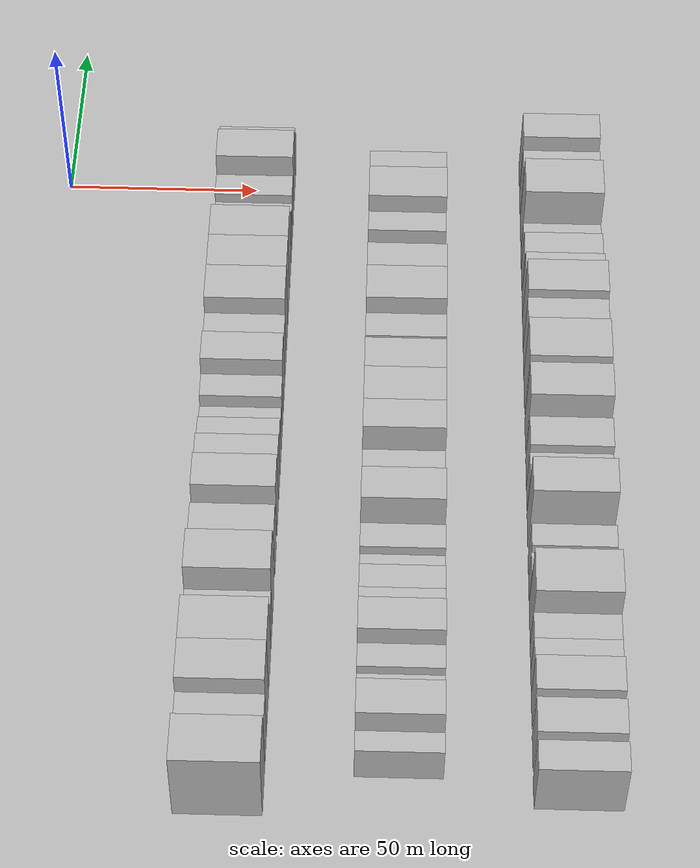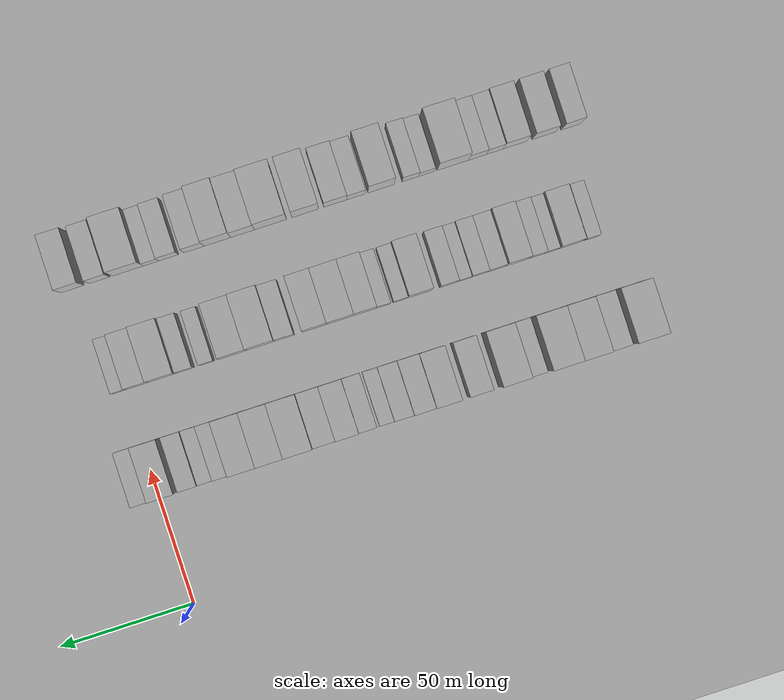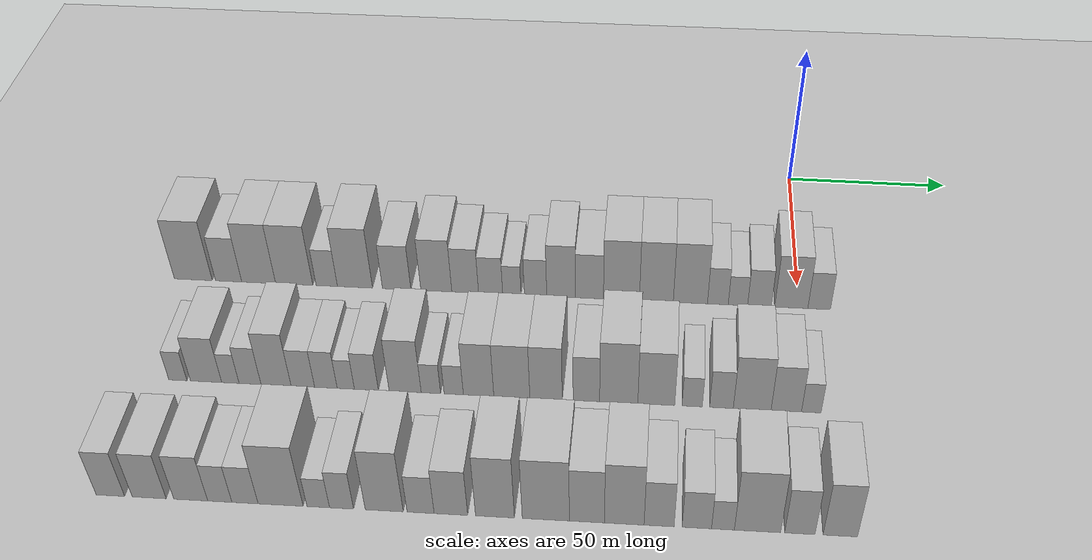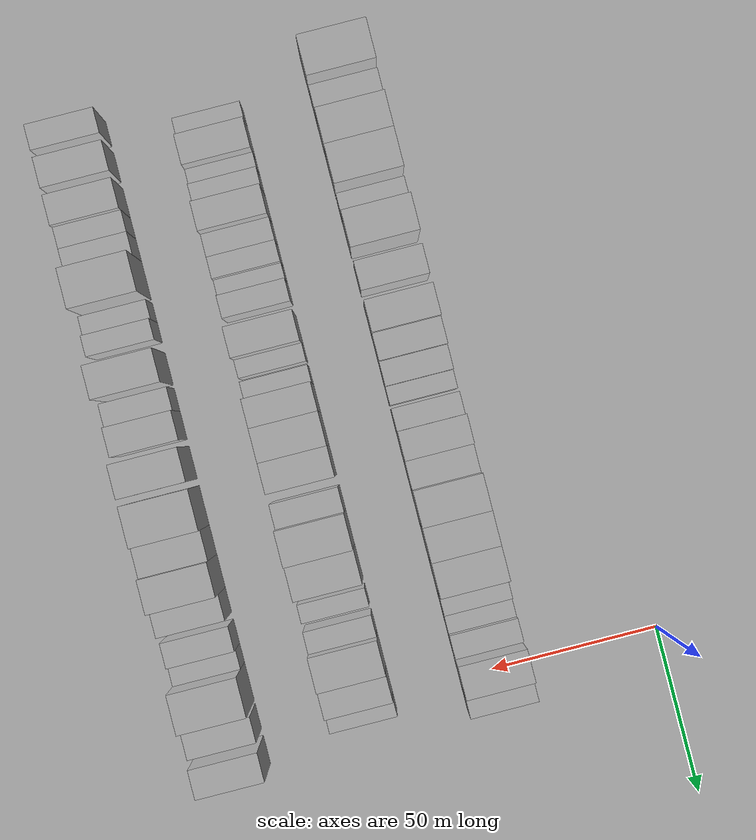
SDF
<sdf version="1.6">
 <world name="default">
  <include><name>ground_plane_1</name><uri>model://HANNAS_ground_plane</uri></include>
  <include>
   <name>ground_plane_2</name>
   <uri>model://HANNAS_ground_plane</uri>
   <pose>100 0 0  0 0 0</pose>
  </include>
  <model name="building_24">
   <static>1</static>
   <pose>50.0000 -181.7386 0 0.000000 0.000000 0.000000</pose>
   <link name="link">
    <pose>0 0 12.00 0 0 0</pose>
    <collision name="collision"><geometry><box><size>20.0000 11.6071 24.0000</size></box></geometry></collision>
    <visual name="visual">
     <cast_shadows>0</cast_shadows>
     <geometry><box><size>20.0000 11.6071 24.0000</size></box></geometry>
     <material>
      <script>
       <uri>model://HANNAS_wall/materials/scripts</uri>
       <uri>model://HANNAS_wall/materials/textures</uri>
       <name>vrc/HANNAS_wall</name>
      </script>
     </material>
    </visual>
   </link>
  </model>
  <model name="building_25">
   <static>1</static>
   <pose>50.0000 -170.9061 0 0.000000 0.000000 0.000000</pose>
   <link name="link">
    <pose>0 0 9.00 0 0 0</pose>
    <collision name="collision"><geometry><box><size>20.0000 8.0578 18.0000</size></box></geometry></collision>
    <visual name="visual">
     <cast_shadows>0</cast_shadows>
     <geometry><box><size>20.0000 8.0578 18.0000</size></box></geometry>
     <material>
      <script>
       <uri>model://HANNAS_wall/materials/scripts</uri>
       <uri>model://HANNAS_wall/materials/textures</uri>
       <name>vrc/HANNAS_wall</name>
      </script>
     </material>
    </visual>
   </link>
  </model>
  <model name="building_26">
   <static>1</static>
   <pose>50.0000 -161.7158 0 0.000000 0.000000 0.000000</pose>
   <link name="link">
    <pose>0 0 12.00 0 0 0</pose>
    <collision name="collision"><geometry><box><size>20.0000 10.3230 24.0000</size></box></geometry></collision>
    <visual name="visual">
     <cast_shadows>0</cast_shadows>
     <geometry><box><size>20.0000 10.3230 24.0000</size></box></geometry>
     <material>
      <script>
       <uri>model://HANNAS_wall/materials/scripts</uri>
       <uri>model://HANNAS_wall/materials/textures</uri>
       <name>vrc/HANNAS_wall</name>
      </script>
     </material>
    </visual>
   </link>
  </model>
  <model name="building_27">
   <static>1</static>
   <pose>50.0000 -150.8850 0 0.000000 0.000000 0.000000</pose>
   <link name="link">
    <pose>0 0 12.00 0 0 0</pose>
    <collision name="collision"><geometry><box><size>20.0000 11.3386 24.0000</size></box></geometry></collision>
    <visual name="visual">
     <cast_shadows>0</cast_shadows>
     <geometry><box><size>20.0000 11.3386 24.0000</size></box></geometry>
     <material>
      <script>
       <uri>model://HANNAS_wall/materials/scripts</uri>
       <uri>model://HANNAS_wall/materials/textures</uri>
       <name>vrc/HANNAS_wall</name>
      </script>
     </material>
    </visual>
   </link>
  </model>
  <model name="building_28">
   <static>1</static>
   <pose>50.0000 -140.9784 0 0.000000 0.000000 0.000000</pose>
   <link name="link">
    <pose>0 0 7.50 0 0 0</pose>
    <collision name="collision"><geometry><box><size>20.0000 6.4745 15.0000</size></box></geometry></collision>
    <visual name="visual">
     <cast_shadows>0</cast_shadows>
     <geometry><box><size>20.0000 6.4745 15.0000</size></box></geometry>
     <material>
      <script>
       <uri>model://HANNAS_wall/materials/scripts</uri>
       <uri>model://HANNAS_wall/materials/textures</uri>
       <name>vrc/HANNAS_wall</name>
      </script>
     </material>
    </visual>
   </link>
  </model>
  <model name="building_29">
   <static>1</static>
   <pose>50.0000 -132.4195 0 0.000000 0.000000 0.000000</pose>
   <link name="link">
    <pose>0 0 12.00 0 0 0</pose>
    <collision name="collision"><geometry><box><size>20.0000 10.6431 24.0000</size></box></geometry></collision>
    <visual name="visual">
     <cast_shadows>0</cast_shadows>
     <geometry><box><size>20.0000 10.6431 24.0000</size></box></geometry>
     <material>
      <script>
       <uri>model://HANNAS_wall/materials/scripts</uri>
       <uri>model://HANNAS_wall/materials/textures</uri>
       <name>vrc/HANNAS_wall</name>
      </script>
     </material>
    </visual>
   </link>
  </model>
  <model name="building_30">
   <static>1</static>
   <pose>50.0000 -119.7952 0 0.000000 0.000000 0.000000</pose>
   <link name="link">
    <pose>0 0 9.00 0 0 0</pose>
    <collision name="collision"><geometry><box><size>20.0000 8.6057 18.0000</size></box></geometry></collision>
    <visual name="visual">
     <cast_shadows>0</cast_shadows>
     <geometry><box><size>20.0000 8.6057 18.0000</size></box></geometry>
     <material>
      <script>
       <uri>model://HANNAS_wall/materials/scripts</uri>
       <uri>model://HANNAS_wall/materials/textures</uri>
       <name>vrc/HANNAS_wall</name>
      </script>
     </material>
    </visual>
   </link>
  </model>
  <model name="building_31">
   <static>1</static>
   <pose>50.0000 -107.8266 0 0.000000 0.000000 0.000000</pose>
   <link name="link">
    <pose>0 0 10.50 0 0 0</pose>
    <collision name="collision"><geometry><box><size>20.0000 9.3315 21.0000</size></box></geometry></collision>
    <visual name="visual">
     <cast_shadows>0</cast_shadows>
     <geometry><box><size>20.0000 9.3315 21.0000</size></box></geometry>
     <material>
      <script>
       <uri>model://HANNAS_wall/materials/scripts</uri>
       <uri>model://HANNAS_wall/materials/textures</uri>
       <name>vrc/HANNAS_wall</name>
      </script>
     </material>
    </visual>
   </link>
  </model>
  <model name="building_32">
   <static>1</static>
   <pose>50.0000 -99.1483 0 0.000000 0.000000 0.000000</pose>
   <link name="link">
    <pose>0 0 9.00 0 0 0</pose>
    <collision name="collision"><geometry><box><size>20.0000 8.0252 18.0000</size></box></geometry></collision>
    <visual name="visual">
     <cast_shadows>0</cast_shadows>
     <geometry><box><size>20.0000 8.0252 18.0000</size></box></geometry>
     <material>
      <script>
       <uri>model://HANNAS_wall/materials/scripts</uri>
       <uri>model://HANNAS_wall/materials/textures</uri>
       <name>vrc/HANNAS_wall</name>
      </script>
     </material>
    </visual>
   </link>
  </model>
  <model name="building_33">
   <static>1</static>
   <pose>50.0000 -91.5159 0 0.000000 0.000000 0.000000</pose>
   <link name="link">
    <pose>0 0 7.50 0 0 0</pose>
    <collision name="collision"><geometry><box><size>20.0000 7.2396 15.0000</size></box></geometry></collision>
    <visual name="visual">
     <cast_shadows>0</cast_shadows>
     <geometry><box><size>20.0000 7.2396 15.0000</size></box></geometry>
     <material>
      <script>
       <uri>model://HANNAS_wall/materials/scripts</uri>
       <uri>model://HANNAS_wall/materials/textures</uri>
       <name>vrc/HANNAS_wall</name>
      </script>
     </material>
    </visual>
   </link>
  </model>
  <model name="building_34">
   <static>1</static>
   <pose>50.0000 -85.1472 0 0.000000 0.000000 0.000000</pose>
   <link name="link">
    <pose>0 0 6.00 0 0 0</pose>
    <collision name="collision"><geometry><box><size>20.0000 5.4978 12.0000</size></box></geometry></collision>
    <visual name="visual">
     <cast_shadows>0</cast_shadows>
     <geometry><box><size>20.0000 5.4978 12.0000</size></box></geometry>
     <material>
      <script>
       <uri>model://HANNAS_wall/materials/scripts</uri>
       <uri>model://HANNAS_wall/materials/textures</uri>
       <name>vrc/HANNAS_wall</name>
      </script>
     </material>
    </visual>
   </link>
  </model>
  <model name="building_35">
   <static>1</static>
   <pose>50.0000 -78.0535 0 0.000000 0.000000 0.000000</pose>
   <link name="link">
    <pose>0 0 7.50 0 0 0</pose>
    <collision name="collision"><geometry><box><size>20.0000 6.6894 15.0000</size></box></geometry></collision>
    <visual name="visual">
     <cast_shadows>0</cast_shadows>
     <geometry><box><size>20.0000 6.6894 15.0000</size></box></geometry>
     <material>
      <script>
       <uri>model://HANNAS_wall/materials/scripts</uri>
       <uri>model://HANNAS_wall/materials/textures</uri>
       <name>vrc/HANNAS_wall</name>
      </script>
     </material>
    </visual>
   </link>
  </model>
  <model name="building_36">
   <static>1</static>
   <pose>50.0000 -70.4153 0 0.000000 0.000000 0.000000</pose>
   <link name="link">
    <pose>0 0 10.50 0 0 0</pose>
    <collision name="collision"><geometry><box><size>20.0000 8.5872 21.0000</size></box></geometry></collision>
    <visual name="visual">
     <cast_shadows>0</cast_shadows>
     <geometry><box><size>20.0000 8.5872 21.0000</size></box></geometry>
     <material>
      <script>
       <uri>model://HANNAS_wall/materials/scripts</uri>
       <uri>model://HANNAS_wall/materials/textures</uri>
       <name>vrc/HANNAS_wall</name>
      </script>
     </material>
    </visual>
   </link>
  </model>
  <model name="building_37">
   <static>1</static>
   <pose>50.0000 -61.9511 0 0.000000 0.000000 0.000000</pose>
   <link name="link">
    <pose>0 0 9.00 0 0 0</pose>
    <collision name="collision"><geometry><box><size>20.0000 8.3411 18.0000</size></box></geometry></collision>
    <visual name="visual">
     <cast_shadows>0</cast_shadows>
     <geometry><box><size>20.0000 8.3411 18.0000</size></box></geometry>
     <material>
      <script>
       <uri>model://HANNAS_wall/materials/scripts</uri>
       <uri>model://HANNAS_wall/materials/textures</uri>
       <name>vrc/HANNAS_wall</name>
      </script>
     </material>
    </visual>
   </link>
  </model>
  <model name="building_38">
   <static>1</static>
   <pose>50.0000 -52.4399 0 0.000000 0.000000 0.000000</pose>
   <link name="link">
    <pose>0 0 12.00 0 0 0</pose>
    <collision name="collision"><geometry><box><size>20.0000 10.6813 24.0000</size></box></geometry></collision>
    <visual name="visual">
     <cast_shadows>0</cast_shadows>
     <geometry><box><size>20.0000 10.6813 24.0000</size></box></geometry>
     <material>
      <script>
       <uri>model://HANNAS_wall/materials/scripts</uri>
       <uri>model://HANNAS_wall/materials/textures</uri>
       <name>vrc/HANNAS_wall</name>
      </script>
     </material>
    </visual>
   </link>
  </model>
  <model name="building_39">
   <static>1</static>
   <pose>50.0000 -42.0835 0 0.000000 0.000000 0.000000</pose>
   <link name="link">
    <pose>0 0 12.00 0 0 0</pose>
    <collision name="collision"><geometry><box><size>20.0000 10.0317 24.0000</size></box></geometry></collision>
    <visual name="visual">
     <cast_shadows>0</cast_shadows>
     <geometry><box><size>20.0000 10.0317 24.0000</size></box></geometry>
     <material>
      <script>
       <uri>model://HANNAS_wall/materials/scripts</uri>
       <uri>model://HANNAS_wall/materials/textures</uri>
       <name>vrc/HANNAS_wall</name>
      </script>
     </material>
    </visual>
   </link>
  </model>
  <model name="building_40">
   <static>1</static>
   <pose>50.0000 -32.0134 0 0.000000 0.000000 0.000000</pose>
   <link name="link">
    <pose>0 0 12.00 0 0 0</pose>
    <collision name="collision"><geometry><box><size>20.0000 10.1085 24.0000</size></box></geometry></collision>
    <visual name="visual">
     <cast_shadows>0</cast_shadows>
     <geometry><box><size>20.0000 10.1085 24.0000</size></box></geometry>
     <material>
      <script>
       <uri>model://HANNAS_wall/materials/scripts</uri>
       <uri>model://HANNAS_wall/materials/textures</uri>
       <name>vrc/HANNAS_wall</name>
      </script>
     </material>
    </visual>
   </link>
  </model>
  <model name="building_41">
   <static>1</static>
   <pose>50.0000 -23.8948 0 0.000000 0.000000 0.000000</pose>
   <link name="link">
    <pose>0 0 7.50 0 0 0</pose>
    <collision name="collision"><geometry><box><size>20.0000 6.1287 15.0000</size></box></geometry></collision>
    <visual name="visual">
     <cast_shadows>0</cast_shadows>
     <geometry><box><size>20.0000 6.1287 15.0000</size></box></geometry>
     <material>
      <script>
       <uri>model://HANNAS_wall/materials/scripts</uri>
       <uri>model://HANNAS_wall/materials/textures</uri>
       <name>vrc/HANNAS_wall</name>
      </script>
     </material>
    </visual>
   </link>
  </model>
  <model name="building_42">
   <static>1</static>
   <pose>50.0000 -17.9793 0 0.000000 0.000000 0.000000</pose>
   <link name="link">
    <pose>0 0 6.00 0 0 0</pose>
    <collision name="collision"><geometry><box><size>20.0000 5.7023 12.0000</size></box></geometry></collision>
    <visual name="visual">
     <cast_shadows>0</cast_shadows>
     <geometry><box><size>20.0000 5.7023 12.0000</size></box></geometry>
     <material>
      <script>
       <uri>model://HANNAS_wall/materials/scripts</uri>
       <uri>model://HANNAS_wall/materials/textures</uri>
       <name>vrc/HANNAS_wall</name>
      </script>
     </material>
    </visual>
   </link>
  </model>
  <model name="building_43">
   <static>1</static>
   <pose>50.0000 -11.6382 0 0.000000 0.000000 0.000000</pose>
   <link name="link">
    <pose>0 0 7.50 0 0 0</pose>
    <collision name="collision"><geometry><box><size>20.0000 6.9798 15.0000</size></box></geometry></collision>
    <visual name="visual">
     <cast_shadows>0</cast_shadows>
     <geometry><box><size>20.0000 6.9798 15.0000</size></box></geometry>
     <material>
      <script>
       <uri>model://HANNAS_wall/materials/scripts</uri>
       <uri>model://HANNAS_wall/materials/textures</uri>
       <name>vrc/HANNAS_wall</name>
      </script>
     </material>
    </visual>
   </link>
  </model>
  <model name="building_44">
   <static>1</static>
   <pose>50.0000 -2.2863 0 0.000000 0.000000 0.000000</pose>
   <link name="link">
    <pose>0 0 10.50 0 0 0</pose>
    <collision name="collision"><geometry><box><size>20.0000 9.7241 21.0000</size></box></geometry></collision>
    <visual name="visual">
     <cast_shadows>0</cast_shadows>
     <geometry><box><size>20.0000 9.7241 21.0000</size></box></geometry>
     <material>
      <script>
       <uri>model://HANNAS_wall/materials/scripts</uri>
       <uri>model://HANNAS_wall/materials/textures</uri>
       <name>vrc/HANNAS_wall</name>
      </script>
     </material>
    </visual>
   </link>
  </model>
  <model name="building_45">
   <static>1</static>
   <pose>50.0000 5.8928 0 0.000000 0.000000 0.000000</pose>
   <link name="link">
    <pose>0 0 7.50 0 0 0</pose>
    <collision name="collision"><geometry><box><size>20.0000 6.6339 15.0000</size></box></geometry></collision>
    <visual name="visual">
     <cast_shadows>0</cast_shadows>
     <geometry><box><size>20.0000 6.6339 15.0000</size></box></geometry>
     <material>
      <script>
       <uri>model://HANNAS_wall/materials/scripts</uri>
       <uri>model://HANNAS_wall/materials/textures</uri>
       <name>vrc/HANNAS_wall</name>
      </script>
     </material>
    </visual>
   </link>
  </model>
  <model name="building_115">
   <static>1</static>
   <pose>90.0000 -174.5740 0 0.000000 0.000000 0.000000</pose>
   <link name="link">
    <pose>0 0 6.00 0 0 0</pose>
    <collision name="collision"><geometry><box><size>20.0000 5.1584 12.0000</size></box></geometry></collision>
    <visual name="visual">
     <cast_shadows>0</cast_shadows>
     <geometry><box><size>20.0000 5.1584 12.0000</size></box></geometry>
     <material>
      <script>
       <uri>model://HANNAS_wall/materials/scripts</uri>
       <uri>model://HANNAS_wall/materials/textures</uri>
       <name>vrc/HANNAS_wall</name>
      </script>
     </material>
    </visual>
   </link>
  </model>
  <model name="building_116">
   <static>1</static>
   <pose>90.0000 -166.5674 0 0.000000 0.000000 0.000000</pose>
   <link name="link">
    <pose>0 0 9.00 0 0 0</pose>
    <collision name="collision"><geometry><box><size>20.0000 8.8548 18.0000</size></box></geometry></collision>
    <visual name="visual">
     <cast_shadows>0</cast_shadows>
     <geometry><box><size>20.0000 8.8548 18.0000</size></box></geometry>
     <material>
      <script>
       <uri>model://HANNAS_wall/materials/scripts</uri>
       <uri>model://HANNAS_wall/materials/textures</uri>
       <name>vrc/HANNAS_wall</name>
      </script>
     </material>
    </visual>
   </link>
  </model>
  <model name="building_117">
   <static>1</static>
   <pose>90.0000 -159.6843 0 0.000000 0.000000 0.000000</pose>
   <link name="link">
    <pose>0 0 6.00 0 0 0</pose>
    <collision name="collision"><geometry><box><size>20.0000 4.9114 12.0000</size></box></geometry></collision>
    <visual name="visual">
     <cast_shadows>0</cast_shadows>
     <geometry><box><size>20.0000 4.9114 12.0000</size></box></geometry>
     <material>
      <script>
       <uri>model://HANNAS_wall/materials/scripts</uri>
       <uri>model://HANNAS_wall/materials/textures</uri>
       <name>vrc/HANNAS_wall</name>
      </script>
     </material>
    </visual>
   </link>
  </model>
  <model name="building_118">
   <static>1</static>
   <pose>90.0000 -154.1243 0 0.000000 0.000000 0.000000</pose>
   <link name="link">
    <pose>0 0 7.50 0 0 0</pose>
    <collision name="collision"><geometry><box><size>20.0000 6.2087 15.0000</size></box></geometry></collision>
    <visual name="visual">
     <cast_shadows>0</cast_shadows>
     <geometry><box><size>20.0000 6.2087 15.0000</size></box></geometry>
     <material>
      <script>
       <uri>model://HANNAS_wall/materials/scripts</uri>
       <uri>model://HANNAS_wall/materials/textures</uri>
       <name>vrc/HANNAS_wall</name>
      </script>
     </material>
    </visual>
   </link>
  </model>
  <model name="building_119">
   <static>1</static>
   <pose>90.0000 -146.7748 0 0.000000 0.000000 0.000000</pose>
   <link name="link">
    <pose>0 0 10.50 0 0 0</pose>
    <collision name="collision"><geometry><box><size>20.0000 8.4903 21.0000</size></box></geometry></collision>
    <visual name="visual">
     <cast_shadows>0</cast_shadows>
     <geometry><box><size>20.0000 8.4903 21.0000</size></box></geometry>
     <material>
      <script>
       <uri>model://HANNAS_wall/materials/scripts</uri>
       <uri>model://HANNAS_wall/materials/textures</uri>
       <name>vrc/HANNAS_wall</name>
      </script>
     </material>
    </visual>
   </link>
  </model>
  <model name="building_120">
   <static>1</static>
   <pose>90.0000 -139.2105 0 0.000000 0.000000 0.000000</pose>
   <link name="link">
    <pose>0 0 7.50 0 0 0</pose>
    <collision name="collision"><geometry><box><size>20.0000 6.6384 15.0000</size></box></geometry></collision>
    <visual name="visual">
     <cast_shadows>0</cast_shadows>
     <geometry><box><size>20.0000 6.6384 15.0000</size></box></geometry>
     <material>
      <script>
       <uri>model://HANNAS_wall/materials/scripts</uri>
       <uri>model://HANNAS_wall/materials/textures</uri>
       <name>vrc/HANNAS_wall</name>
      </script>
     </material>
    </visual>
   </link>
  </model>
  <model name="building_121">
   <static>1</static>
   <pose>90.0000 -132.7266 0 0.000000 0.000000 0.000000</pose>
   <link name="link">
    <pose>0 0 7.50 0 0 0</pose>
    <collision name="collision"><geometry><box><size>20.0000 6.3294 15.0000</size></box></geometry></collision>
    <visual name="visual">
     <cast_shadows>0</cast_shadows>
     <geometry><box><size>20.0000 6.3294 15.0000</size></box></geometry>
     <material>
      <script>
       <uri>model://HANNAS_wall/materials/scripts</uri>
       <uri>model://HANNAS_wall/materials/textures</uri>
       <name>vrc/HANNAS_wall</name>
      </script>
     </material>
    </visual>
   </link>
  </model>
  <model name="building_122">
   <static>1</static>
   <pose>90.0000 -127.1419 0 0.000000 0.000000 0.000000</pose>
   <link name="link">
    <pose>0 0 6.00 0 0 0</pose>
    <collision name="collision"><geometry><box><size>20.0000 4.8399 12.0000</size></box></geometry></collision>
    <visual name="visual">
     <cast_shadows>0</cast_shadows>
     <geometry><box><size>20.0000 4.8399 12.0000</size></box></geometry>
     <material>
      <script>
       <uri>model://HANNAS_wall/materials/scripts</uri>
       <uri>model://HANNAS_wall/materials/textures</uri>
       <name>vrc/HANNAS_wall</name>
      </script>
     </material>
    </visual>
   </link>
  </model>
  <model name="building_123">
   <static>1</static>
   <pose>90.0000 -121.3613 0 0.000000 0.000000 0.000000</pose>
   <link name="link">
    <pose>0 0 7.50 0 0 0</pose>
    <collision name="collision"><geometry><box><size>20.0000 6.7214 15.0000</size></box></geometry></collision>
    <visual name="visual">
     <cast_shadows>0</cast_shadows>
     <geometry><box><size>20.0000 6.7214 15.0000</size></box></geometry>
     <material>
      <script>
       <uri>model://HANNAS_wall/materials/scripts</uri>
       <uri>model://HANNAS_wall/materials/textures</uri>
       <name>vrc/HANNAS_wall</name>
      </script>
     </material>
    </visual>
   </link>
  </model>
  <model name="building_124">
   <static>1</static>
   <pose>90.0000 -110.5123 0 0.000000 0.000000 0.000000</pose>
   <link name="link">
    <pose>0 0 10.50 0 0 0</pose>
    <collision name="collision"><geometry><box><size>20.0000 8.9765 21.0000</size></box></geometry></collision>
    <visual name="visual">
     <cast_shadows>0</cast_shadows>
     <geometry><box><size>20.0000 8.9765 21.0000</size></box></geometry>
     <material>
      <script>
       <uri>model://HANNAS_wall/materials/scripts</uri>
       <uri>model://HANNAS_wall/materials/textures</uri>
       <name>vrc/HANNAS_wall</name>
      </script>
     </material>
    </visual>
   </link>
  </model>
  <model name="building_125">
   <static>1</static>
   <pose>90.0000 -103.3233 0 0.000000 0.000000 0.000000</pose>
   <link name="link">
    <pose>0 0 6.00 0 0 0</pose>
    <collision name="collision"><geometry><box><size>20.0000 5.4015 12.0000</size></box></geometry></collision>
    <visual name="visual">
     <cast_shadows>0</cast_shadows>
     <geometry><box><size>20.0000 5.4015 12.0000</size></box></geometry>
     <material>
      <script>
       <uri>model://HANNAS_wall/materials/scripts</uri>
       <uri>model://HANNAS_wall/materials/textures</uri>
       <name>vrc/HANNAS_wall</name>
      </script>
     </material>
    </visual>
   </link>
  </model>
  <model name="building_126">
   <static>1</static>
   <pose>90.0000 -96.9538 0 0.000000 0.000000 0.000000</pose>
   <link name="link">
    <pose>0 0 6.00 0 0 0</pose>
    <collision name="collision"><geometry><box><size>20.0000 5.3375 12.0000</size></box></geometry></collision>
    <visual name="visual">
     <cast_shadows>0</cast_shadows>
     <geometry><box><size>20.0000 5.3375 12.0000</size></box></geometry>
     <material>
      <script>
       <uri>model://HANNAS_wall/materials/scripts</uri>
       <uri>model://HANNAS_wall/materials/textures</uri>
       <name>vrc/HANNAS_wall</name>
      </script>
     </material>
    </visual>
   </link>
  </model>
  <model name="building_127">
   <static>1</static>
   <pose>90.0000 -90.0505 0 0.000000 0.000000 0.000000</pose>
   <link name="link">
    <pose>0 0 10.50 0 0 0</pose>
    <collision name="collision"><geometry><box><size>20.0000 8.4691 21.0000</size></box></geometry></collision>
    <visual name="visual">
     <cast_shadows>0</cast_shadows>
     <geometry><box><size>20.0000 8.4691 21.0000</size></box></geometry>
     <material>
      <script>
       <uri>model://HANNAS_wall/materials/scripts</uri>
       <uri>model://HANNAS_wall/materials/textures</uri>
       <name>vrc/HANNAS_wall</name>
      </script>
     </material>
    </visual>
   </link>
  </model>
  <model name="building_128">
   <static>1</static>
   <pose>90.0000 -80.8154 0 0.000000 0.000000 0.000000</pose>
   <link name="link">
    <pose>0 0 10.50 0 0 0</pose>
    <collision name="collision"><geometry><box><size>20.0000 10.0011 21.0000</size></box></geometry></collision>
    <visual name="visual">
     <cast_shadows>0</cast_shadows>
     <geometry><box><size>20.0000 10.0011 21.0000</size></box></geometry>
     <material>
      <script>
       <uri>model://HANNAS_wall/materials/scripts</uri>
       <uri>model://HANNAS_wall/materials/textures</uri>
       <name>vrc/HANNAS_wall</name>
      </script>
     </material>
    </visual>
   </link>
  </model>
  <model name="building_129">
   <static>1</static>
   <pose>90.0000 -71.3346 0 0.000000 0.000000 0.000000</pose>
   <link name="link">
    <pose>0 0 10.50 0 0 0</pose>
    <collision name="collision"><geometry><box><size>20.0000 8.9607 21.0000</size></box></geometry></collision>
    <visual name="visual">
     <cast_shadows>0</cast_shadows>
     <geometry><box><size>20.0000 8.9607 21.0000</size></box></geometry>
     <material>
      <script>
       <uri>model://HANNAS_wall/materials/scripts</uri>
       <uri>model://HANNAS_wall/materials/textures</uri>
       <name>vrc/HANNAS_wall</name>
      </script>
     </material>
    </visual>
   </link>
  </model>
  <model name="building_130">
   <static>1</static>
   <pose>90.0000 -60.2048 0 0.000000 0.000000 0.000000</pose>
   <link name="link">
    <pose>0 0 9.00 0 0 0</pose>
    <collision name="collision"><geometry><box><size>20.0000 7.2988 18.0000</size></box></geometry></collision>
    <visual name="visual">
     <cast_shadows>0</cast_shadows>
     <geometry><box><size>20.0000 7.2988 18.0000</size></box></geometry>
     <material>
      <script>
       <uri>model://HANNAS_wall/materials/scripts</uri>
       <uri>model://HANNAS_wall/materials/textures</uri>
       <name>vrc/HANNAS_wall</name>
      </script>
     </material>
    </visual>
   </link>
  </model>
  <model name="building_131">
   <static>1</static>
   <pose>90.0000 -51.3034 0 0.000000 0.000000 0.000000</pose>
   <link name="link">
    <pose>0 0 12.00 0 0 0</pose>
    <collision name="collision"><geometry><box><size>20.0000 10.5041 24.0000</size></box></geometry></collision>
    <visual name="visual">
     <cast_shadows>0</cast_shadows>
     <geometry><box><size>20.0000 10.5041 24.0000</size></box></geometry>
     <material>
      <script>
       <uri>model://HANNAS_wall/materials/scripts</uri>
       <uri>model://HANNAS_wall/materials/textures</uri>
       <name>vrc/HANNAS_wall</name>
      </script>
     </material>
    </visual>
   </link>
  </model>
  <model name="building_132">
   <static>1</static>
   <pose>90.0000 -40.9867 0 0.000000 0.000000 0.000000</pose>
   <link name="link">
    <pose>0 0 10.50 0 0 0</pose>
    <collision name="collision"><geometry><box><size>20.0000 10.1294 21.0000</size></box></geometry></collision>
    <visual name="visual">
     <cast_shadows>0</cast_shadows>
     <geometry><box><size>20.0000 10.1294 21.0000</size></box></geometry>
     <material>
      <script>
       <uri>model://HANNAS_wall/materials/scripts</uri>
       <uri>model://HANNAS_wall/materials/textures</uri>
       <name>vrc/HANNAS_wall</name>
      </script>
     </material>
    </visual>
   </link>
  </model>
  <model name="building_133">
   <static>1</static>
   <pose>90.0000 -31.1497 0 0.000000 0.000000 0.000000</pose>
   <link name="link">
    <pose>0 0 6.00 0 0 0</pose>
    <collision name="collision"><geometry><box><size>20.0000 5.5446 12.0000</size></box></geometry></collision>
    <visual name="visual">
     <cast_shadows>0</cast_shadows>
     <geometry><box><size>20.0000 5.5446 12.0000</size></box></geometry>
     <material>
      <script>
       <uri>model://HANNAS_wall/materials/scripts</uri>
       <uri>model://HANNAS_wall/materials/textures</uri>
       <name>vrc/HANNAS_wall</name>
      </script>
     </material>
    </visual>
   </link>
  </model>
  <model name="building_134">
   <static>1</static>
   <pose>90.0000 -23.1475 0 0.000000 0.000000 0.000000</pose>
   <link name="link">
    <pose>0 0 7.50 0 0 0</pose>
    <collision name="collision"><geometry><box><size>20.0000 6.4598 15.0000</size></box></geometry></collision>
    <visual name="visual">
     <cast_shadows>0</cast_shadows>
     <geometry><box><size>20.0000 6.4598 15.0000</size></box></geometry>
     <material>
      <script>
       <uri>model://HANNAS_wall/materials/scripts</uri>
       <uri>model://HANNAS_wall/materials/textures</uri>
       <name>vrc/HANNAS_wall</name>
      </script>
     </material>
    </visual>
   </link>
  </model>
  <model name="building_135">
   <static>1</static>
   <pose>90.0000 -14.7688 0 0.000000 0.000000 0.000000</pose>
   <link name="link">
    <pose>0 0 10.50 0 0 0</pose>
    <collision name="collision"><geometry><box><size>20.0000 10.2975 21.0000</size></box></geometry></collision>
    <visual name="visual">
     <cast_shadows>0</cast_shadows>
     <geometry><box><size>20.0000 10.2975 21.0000</size></box></geometry>
     <material>
      <script>
       <uri>model://HANNAS_wall/materials/scripts</uri>
       <uri>model://HANNAS_wall/materials/textures</uri>
       <name>vrc/HANNAS_wall</name>
      </script>
     </material>
    </visual>
   </link>
  </model>
  <model name="building_136">
   <static>1</static>
   <pose>90.0000 -5.4896 0 0.000000 0.000000 0.000000</pose>
   <link name="link">
    <pose>0 0 9.00 0 0 0</pose>
    <collision name="collision"><geometry><box><size>20.0000 8.2609 18.0000</size></box></geometry></collision>
    <visual name="visual">
     <cast_shadows>0</cast_shadows>
     <geometry><box><size>20.0000 8.2609 18.0000</size></box></geometry>
     <material>
      <script>
       <uri>model://HANNAS_wall/materials/scripts</uri>
       <uri>model://HANNAS_wall/materials/textures</uri>
       <name>vrc/HANNAS_wall</name>
      </script>
     </material>
    </visual>
   </link>
  </model>
  <model name="building_137">
   <static>1</static>
   <pose>90.0000 1.3008 0 0.000000 0.000000 0.000000</pose>
   <link name="link">
    <pose>0 0 6.00 0 0 0</pose>
    <collision name="collision"><geometry><box><size>20.0000 5.3197 12.0000</size></box></geometry></collision>
    <visual name="visual">
     <cast_shadows>0</cast_shadows>
     <geometry><box><size>20.0000 5.3197 12.0000</size></box></geometry>
     <material>
      <script>
       <uri>model://HANNAS_wall/materials/scripts</uri>
       <uri>model://HANNAS_wall/materials/textures</uri>
       <name>vrc/HANNAS_wall</name>
      </script>
     </material>
    </visual>
   </link>
  </model>
  <model name="building_205">
   <static>1</static>
   <pose>130.0000 -180.3474 0 0.000000 0.000000 0.000000</pose>
   <link name="link">
    <pose>0 0 9.00 0 0 0</pose>
    <collision name="collision"><geometry><box><size>20.0000 7.4548 18.0000</size></box></geometry></collision>
    <visual name="visual">
     <cast_shadows>0</cast_shadows>
     <geometry><box><size>20.0000 7.4548 18.0000</size></box></geometry>
     <material>
      <script>
       <uri>model://HANNAS_wall/materials/scripts</uri>
       <uri>model://HANNAS_wall/materials/textures</uri>
       <name>vrc/HANNAS_wall</name>
      </script>
     </material>
    </visual>
   </link>
  </model>
  <model name="building_206">
   <static>1</static>
   <pose>130.0000 -170.1773 0 0.000000 0.000000 0.000000</pose>
   <link name="link">
    <pose>0 0 9.00 0 0 0</pose>
    <collision name="collision"><geometry><box><size>20.0000 8.8854 18.0000</size></box></geometry></collision>
    <visual name="visual">
     <cast_shadows>0</cast_shadows>
     <geometry><box><size>20.0000 8.8854 18.0000</size></box></geometry>
     <material>
      <script>
       <uri>model://HANNAS_wall/materials/scripts</uri>
       <uri>model://HANNAS_wall/materials/textures</uri>
       <name>vrc/HANNAS_wall</name>
      </script>
     </material>
    </visual>
   </link>
  </model>
  <model name="building_207">
   <static>1</static>
   <pose>130.0000 -159.2992 0 0.000000 0.000000 0.000000</pose>
   <link name="link">
    <pose>0 0 9.00 0 0 0</pose>
    <collision name="collision"><geometry><box><size>20.0000 8.8709 18.0000</size></box></geometry></collision>
    <visual name="visual">
     <cast_shadows>0</cast_shadows>
     <geometry><box><size>20.0000 8.8709 18.0000</size></box></geometry>
     <material>
      <script>
       <uri>model://HANNAS_wall/materials/scripts</uri>
       <uri>model://HANNAS_wall/materials/textures</uri>
       <name>vrc/HANNAS_wall</name>
      </script>
     </material>
    </visual>
   </link>
  </model>
  <model name="building_208">
   <static>1</static>
   <pose>130.0000 -151.7180 0 0.000000 0.000000 0.000000</pose>
   <link name="link">
    <pose>0 0 7.50 0 0 0</pose>
    <collision name="collision"><geometry><box><size>20.0000 6.2914 15.0000</size></box></geometry></collision>
    <visual name="visual">
     <cast_shadows>0</cast_shadows>
     <geometry><box><size>20.0000 6.2914 15.0000</size></box></geometry>
     <material>
      <script>
       <uri>model://HANNAS_wall/materials/scripts</uri>
       <uri>model://HANNAS_wall/materials/textures</uri>
       <name>vrc/HANNAS_wall</name>
      </script>
     </material>
    </visual>
   </link>
  </model>
  <model name="building_209">
   <static>1</static>
   <pose>130.0000 -145.1689 0 0.000000 0.000000 0.000000</pose>
   <link name="link">
    <pose>0 0 7.50 0 0 0</pose>
    <collision name="collision"><geometry><box><size>20.0000 6.8070 15.0000</size></box></geometry></collision>
    <visual name="visual">
     <cast_shadows>0</cast_shadows>
     <geometry><box><size>20.0000 6.8070 15.0000</size></box></geometry>
     <material>
      <script>
       <uri>model://HANNAS_wall/materials/scripts</uri>
       <uri>model://HANNAS_wall/materials/textures</uri>
       <name>vrc/HANNAS_wall</name>
      </script>
     </material>
    </visual>
   </link>
  </model>
  <model name="building_210">
   <static>1</static>
   <pose>130.0000 -135.9297 0 0.000000 0.000000 0.000000</pose>
   <link name="link">
    <pose>0 0 12.00 0 0 0</pose>
    <collision name="collision"><geometry><box><size>20.0000 11.6714 24.0000</size></box></geometry></collision>
    <visual name="visual">
     <cast_shadows>0</cast_shadows>
     <geometry><box><size>20.0000 11.6714 24.0000</size></box></geometry>
     <material>
      <script>
       <uri>model://HANNAS_wall/materials/scripts</uri>
       <uri>model://HANNAS_wall/materials/textures</uri>
       <name>vrc/HANNAS_wall</name>
      </script>
     </material>
    </visual>
   </link>
  </model>
  <model name="building_211">
   <static>1</static>
   <pose>130.0000 -126.1724 0 0.000000 0.000000 0.000000</pose>
   <link name="link">
    <pose>0 0 6.00 0 0 0</pose>
    <collision name="collision"><geometry><box><size>20.0000 5.8432 12.0000</size></box></geometry></collision>
    <visual name="visual">
     <cast_shadows>0</cast_shadows>
     <geometry><box><size>20.0000 5.8432 12.0000</size></box></geometry>
     <material>
      <script>
       <uri>model://HANNAS_wall/materials/scripts</uri>
       <uri>model://HANNAS_wall/materials/textures</uri>
       <name>vrc/HANNAS_wall</name>
      </script>
     </material>
    </visual>
   </link>
  </model>
  <model name="building_212">
   <static>1</static>
   <pose>130.0000 -120.1488 0 0.000000 0.000000 0.000000</pose>
   <link name="link">
    <pose>0 0 7.50 0 0 0</pose>
    <collision name="collision"><geometry><box><size>20.0000 6.2041 15.0000</size></box></geometry></collision>
    <visual name="visual">
     <cast_shadows>0</cast_shadows>
     <geometry><box><size>20.0000 6.2041 15.0000</size></box></geometry>
     <material>
      <script>
       <uri>model://HANNAS_wall/materials/scripts</uri>
       <uri>model://HANNAS_wall/materials/textures</uri>
       <name>vrc/HANNAS_wall</name>
      </script>
     </material>
    </visual>
   </link>
  </model>
  <model name="building_213">
   <static>1</static>
   <pose>130.0000 -109.1566 0 0.000000 0.000000 0.000000</pose>
   <link name="link">
    <pose>0 0 12.00 0 0 0</pose>
    <collision name="collision"><geometry><box><size>20.0000 9.7802 24.0000</size></box></geometry></collision>
    <visual name="visual">
     <cast_shadows>0</cast_shadows>
     <geometry><box><size>20.0000 9.7802 24.0000</size></box></geometry>
     <material>
      <script>
       <uri>model://HANNAS_wall/materials/scripts</uri>
       <uri>model://HANNAS_wall/materials/textures</uri>
       <name>vrc/HANNAS_wall</name>
      </script>
     </material>
    </visual>
   </link>
  </model>
  <model name="building_214">
   <static>1</static>
   <pose>130.0000 -99.8060 0 0.000000 0.000000 0.000000</pose>
   <link name="link">
    <pose>0 0 7.50 0 0 0</pose>
    <collision name="collision"><geometry><box><size>20.0000 6.9210 15.0000</size></box></geometry></collision>
    <visual name="visual">
     <cast_shadows>0</cast_shadows>
     <geometry><box><size>20.0000 6.9210 15.0000</size></box></geometry>
     <material>
      <script>
       <uri>model://HANNAS_wall/materials/scripts</uri>
       <uri>model://HANNAS_wall/materials/textures</uri>
       <name>vrc/HANNAS_wall</name>
      </script>
     </material>
    </visual>
   </link>
  </model>
  <model name="building_215">
   <static>1</static>
   <pose>130.0000 -92.0443 0 0.000000 0.000000 0.000000</pose>
   <link name="link">
    <pose>0 0 9.00 0 0 0</pose>
    <collision name="collision"><geometry><box><size>20.0000 8.6024 18.0000</size></box></geometry></collision>
    <visual name="visual">
     <cast_shadows>0</cast_shadows>
     <geometry><box><size>20.0000 8.6024 18.0000</size></box></geometry>
     <material>
      <script>
       <uri>model://HANNAS_wall/materials/scripts</uri>
       <uri>model://HANNAS_wall/materials/textures</uri>
       <name>vrc/HANNAS_wall</name>
      </script>
     </material>
    </visual>
   </link>
  </model>
  <model name="building_216">
   <static>1</static>
   <pose>130.0000 -80.7813 0 0.000000 0.000000 0.000000</pose>
   <link name="link">
    <pose>0 0 12.00 0 0 0</pose>
    <collision name="collision"><geometry><box><size>20.0000 9.9237 24.0000</size></box></geometry></collision>
    <visual name="visual">
     <cast_shadows>0</cast_shadows>
     <geometry><box><size>20.0000 9.9237 24.0000</size></box></geometry>
     <material>
      <script>
       <uri>model://HANNAS_wall/materials/scripts</uri>
       <uri>model://HANNAS_wall/materials/textures</uri>
       <name>vrc/HANNAS_wall</name>
      </script>
     </material>
    </visual>
   </link>
  </model>
  <model name="building_217">
   <static>1</static>
   <pose>130.0000 -67.8218 0 0.000000 0.000000 0.000000</pose>
   <link name="link">
    <pose>0 0 12.00 0 0 0</pose>
    <collision name="collision"><geometry><box><size>20.0000 11.9954 24.0000</size></box></geometry></collision>
    <visual name="visual">
     <cast_shadows>0</cast_shadows>
     <geometry><box><size>20.0000 11.9954 24.0000</size></box></geometry>
     <material>
      <script>
       <uri>model://HANNAS_wall/materials/scripts</uri>
       <uri>model://HANNAS_wall/materials/textures</uri>
       <name>vrc/HANNAS_wall</name>
      </script>
     </material>
    </visual>
   </link>
  </model>
  <model name="building_218">
   <static>1</static>
   <pose>130.0000 -57.3902 0 0.000000 0.000000 0.000000</pose>
   <link name="link">
    <pose>0 0 10.50 0 0 0</pose>
    <collision name="collision"><geometry><box><size>20.0000 8.8677 21.0000</size></box></geometry></collision>
    <visual name="visual">
     <cast_shadows>0</cast_shadows>
     <geometry><box><size>20.0000 8.8677 21.0000</size></box></geometry>
     <material>
      <script>
       <uri>model://HANNAS_wall/materials/scripts</uri>
       <uri>model://HANNAS_wall/materials/textures</uri>
       <name>vrc/HANNAS_wall</name>
      </script>
     </material>
    </visual>
   </link>
  </model>
  <model name="building_219">
   <static>1</static>
   <pose>130.0000 -47.9509 0 0.000000 0.000000 0.000000</pose>
   <link name="link">
    <pose>0 0 12.00 0 0 0</pose>
    <collision name="collision"><geometry><box><size>20.0000 10.0110 24.0000</size></box></geometry></collision>
    <visual name="visual">
     <cast_shadows>0</cast_shadows>
     <geometry><box><size>20.0000 10.0110 24.0000</size></box></geometry>
     <material>
      <script>
       <uri>model://HANNAS_wall/materials/scripts</uri>
       <uri>model://HANNAS_wall/materials/textures</uri>
       <name>vrc/HANNAS_wall</name>
      </script>
     </material>
    </visual>
   </link>
  </model>
  <model name="building_220">
   <static>1</static>
   <pose>130.0000 -39.1543 0 0.000000 0.000000 0.000000</pose>
   <link name="link">
    <pose>0 0 9.00 0 0 0</pose>
    <collision name="collision"><geometry><box><size>20.0000 7.5822 18.0000</size></box></geometry></collision>
    <visual name="visual">
     <cast_shadows>0</cast_shadows>
     <geometry><box><size>20.0000 7.5822 18.0000</size></box></geometry>
     <material>
      <script>
       <uri>model://HANNAS_wall/materials/scripts</uri>
       <uri>model://HANNAS_wall/materials/textures</uri>
       <name>vrc/HANNAS_wall</name>
      </script>
     </material>
    </visual>
   </link>
  </model>
  <model name="building_221">
   <static>1</static>
   <pose>130.0000 -29.6611 0 0.000000 0.000000 0.000000</pose>
   <link name="link">
    <pose>0 0 7.50 0 0 0</pose>
    <collision name="collision"><geometry><box><size>20.0000 7.4041 15.0000</size></box></geometry></collision>
    <visual name="visual">
     <cast_shadows>0</cast_shadows>
     <geometry><box><size>20.0000 7.4041 15.0000</size></box></geometry>
     <material>
      <script>
       <uri>model://HANNAS_wall/materials/scripts</uri>
       <uri>model://HANNAS_wall/materials/textures</uri>
       <name>vrc/HANNAS_wall</name>
      </script>
     </material>
    </visual>
   </link>
  </model>
  <model name="building_222">
   <static>1</static>
   <pose>130.0000 -23.0872 0 0.000000 0.000000 0.000000</pose>
   <link name="link">
    <pose>0 0 6.00 0 0 0</pose>
    <collision name="collision"><geometry><box><size>20.0000 5.7439 12.0000</size></box></geometry></collision>
    <visual name="visual">
     <cast_shadows>0</cast_shadows>
     <geometry><box><size>20.0000 5.7439 12.0000</size></box></geometry>
     <material>
      <script>
       <uri>model://HANNAS_wall/materials/scripts</uri>
       <uri>model://HANNAS_wall/materials/textures</uri>
       <name>vrc/HANNAS_wall</name>
      </script>
     </material>
    </visual>
   </link>
  </model>
  <model name="building_223">
   <static>1</static>
   <pose>130.0000 -14.4209 0 0.000000 0.000000 0.000000</pose>
   <link name="link">
    <pose>0 0 12.00 0 0 0</pose>
    <collision name="collision"><geometry><box><size>20.0000 11.5886 24.0000</size></box></geometry></collision>
    <visual name="visual">
     <cast_shadows>0</cast_shadows>
     <geometry><box><size>20.0000 11.5886 24.0000</size></box></geometry>
     <material>
      <script>
       <uri>model://HANNAS_wall/materials/scripts</uri>
       <uri>model://HANNAS_wall/materials/textures</uri>
       <name>vrc/HANNAS_wall</name>
      </script>
     </material>
    </visual>
   </link>
  </model>
  <model name="building_224">
   <static>1</static>
   <pose>130.0000 -3.8384 0 0.000000 0.000000 0.000000</pose>
   <link name="link">
    <pose>0 0 9.00 0 0 0</pose>
    <collision name="collision"><geometry><box><size>20.0000 7.5764 18.0000</size></box></geometry></collision>
    <visual name="visual">
     <cast_shadows>0</cast_shadows>
     <geometry><box><size>20.0000 7.5764 18.0000</size></box></geometry>
     <material>
      <script>
       <uri>model://HANNAS_wall/materials/scripts</uri>
       <uri>model://HANNAS_wall/materials/textures</uri>
       <name>vrc/HANNAS_wall</name>
      </script>
     </material>
    </visual>
   </link>
  </model>
  <model name="building_225">
   <static>1</static>
   <pose>130.0000 6.2375 0 0.000000 0.000000 0.000000</pose>
   <link name="link">
    <pose>0 0 10.50 0 0 0</pose>
    <collision name="collision"><geometry><box><size>20.0000 8.5754 21.0000</size></box></geometry></collision>
    <visual name="visual">
     <cast_shadows>0</cast_shadows>
     <geometry><box><size>20.0000 8.5754 21.0000</size></box></geometry>
     <material>
      <script>
       <uri>model://HANNAS_wall/materials/scripts</uri>
       <uri>model://HANNAS_wall/materials/textures</uri>
       <name>vrc/HANNAS_wall</name>
      </script>
     </material>
    </visual>
   </link>
  </model>
 </world>
</sdf>
